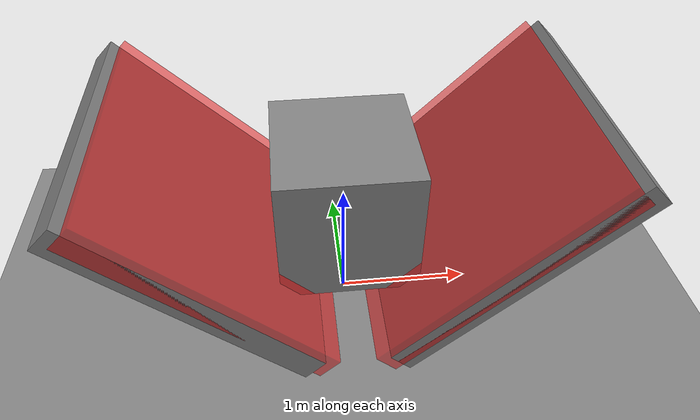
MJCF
<?xml version="1.0" encoding="utf-8"?>
<mujoco>
    <compiler angle="radian" coordinate="local" meshdir="..\stls" texturedir="../textures"></compiler>
    <option timestep="0.0002" iterations="100" gravity="0 0 -9.8" impratio="1">
        <!--apirate only affects the socket API and not the physics simulation-->
        <flag warmstart="enable"></flag>
    </option>

    <worldbody>
            <body pos="0 0 -0.5">
                <geom type="box" size="10 10 0.1"/>
            </body>>

            <body pos="0 0 1">
                <geom type="box" size="0.5 0.5 0.5" mass="1"/>
                <joint type="slide"/>
            </body>

            <body pos="-1 0 1">
                <geom type="box" size="0.1 1 1" euler="0 -0.785 0" mass="1"/>
                <site name="left" type="box" size="0.1 1 1" euler="0 -0.785 0" pos = "0.1 0 0" rgba = "1 0 0 0.5"/>
                <joint name="left" type="slide" axis = "1 0 0"/>
                <joint name="up1" type="slide"/>
            </body>

            <body pos="1 0 1">
                <geom type="box" size="0.1 1 1" euler="0 0.785 0" mass="1"/>
                <site name="right" type="box" size="0.1 1 1" euler="0 0.785 0" pos = "-0.1 0 0" rgba = "1 0 0 0.5"/>
                <joint name="right" type="slide" axis = "1 0 0"/>
                <joint name="up2" type="slide"/>
            </body>
        <light directional="true" ambient="0.2 0.2 0.2" diffuse="0.8 0.8 0.8" specular="0.3 0.3 0.3" castshadow="false" pos="0 1 4" dir="0 0 -1" name="light0"></light>
    </worldbody>
    <actuator>
        <motor joint="left" ctrllimited="true" ctrlrange="-10000 10000"/>
        <motor joint="right" ctrllimited="true" ctrlrange="-10000 10000"/>
        <motor joint="up1"/>
        <motor joint="up2"/>
    </actuator>
    <sensor>
        <touch name="left_sensor"  site="left"/>
        <touch name="right_sensor"  site="right"/>
    </sensor>

</mujoco>
